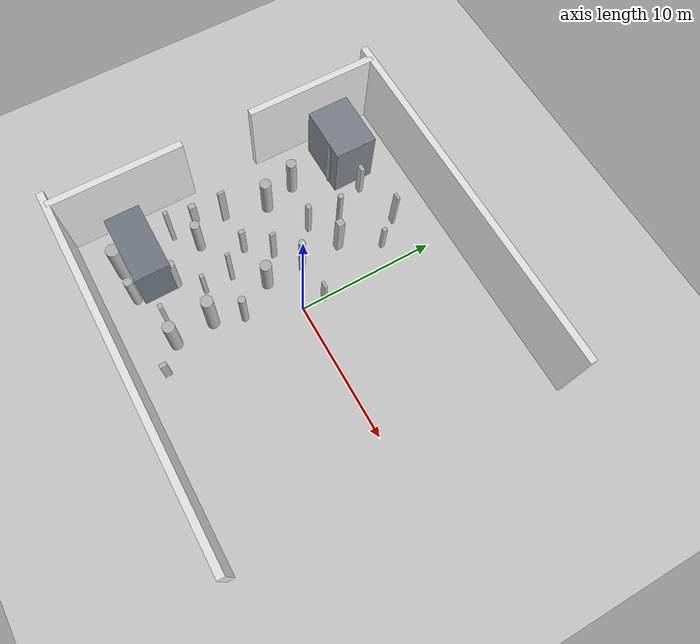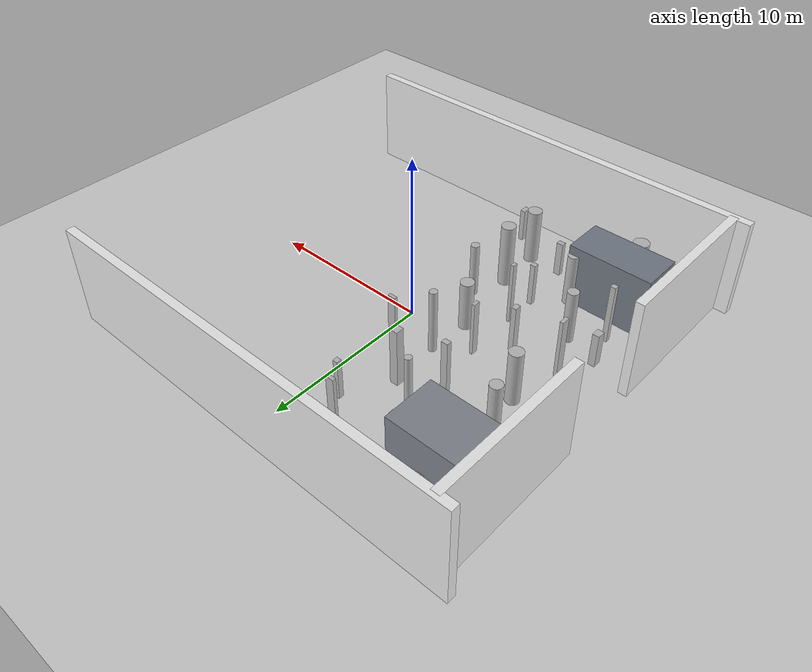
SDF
<sdf version="1.7">
 <world name="default">
  <model name="ground_plane">
   <static>1</static>
   <link name="link">
    <collision name="collision">
     <geometry><plane><normal>0 0 1</normal><size>100 100</size></plane></geometry>
     <surface>
      <contact><collide_bitmask>65535</collide_bitmask></contact>
      <friction><ode><mu>100</mu><mu2>50</mu2></ode></friction>
     </surface>
    </collision>
    <visual name="visual">
     <cast_shadows>0</cast_shadows>
     <geometry><plane><normal>0 0 1</normal><size>100 100</size></plane></geometry>
     <material>
      <script><uri>file://media/materials/scripts/gazebo.material</uri><name>Gazebo/Grey</name></script>
     </material>
    </visual>
   </link>
  </model>
  <model name="cylinder_3_0.9_0.9_3.8">
   <static>true</static>
   <pose>-8.257414005969185 -9.595632051193485 1.8890783754749252 0 0 0</pose>
   <link name="link">
    <visual name="visual">
     <geometry>
      <cylinder><radius>0.46100364447404574</radius><length>3.7781567509498504</length></cylinder>
     </geometry>
    </visual>
   </link>
  </model>
  <model name="cylinder_6_0.4_0.4_3.6">
   <static>true</static>
   <pose>-4.70888775790746 5.484673788684333 1.7842169744343241 0 0 0</pose>
   <link name="link">
    <visual name="visual">
     <geometry>
      <cylinder><radius>0.20563694013090655</radius><length>3.5684339488686483</length></cylinder>
     </geometry>
    </visual>
   </link>
  </model>
  <model name="cylinder_8_0.8_0.8_3.1">
   <static>true</static>
   <pose>-2.80984198852428 -1.259360924013171 1.530112735814635 0 0 0</pose>
   <link name="link">
    <visual name="visual">
     <geometry><cylinder><radius>0.4000300146337003</radius><length>3.06022547162927</length></cylinder></geometry>
    </visual>
   </link>
  </model>
  <model name="cylinder_9_0.5_0.5_4.0">
   <static>true</static>
   <pose>-2.725784581147548 1.4039354083575937 1.994186919029613 0 0 0</pose>
   <link name="link">
    <visual name="visual">
     <geometry>
      <cylinder><radius>0.23061344322440844</radius><length>3.988373838059226</length></cylinder>
     </geometry>
    </visual>
   </link>
  </model>
  <model name="cylinder_10_0.7_0.7_3.3">
   <static>true</static>
   <pose>-5.822464878103306 -6.773809642300074 1.626645801269891 0 0 0</pose>
   <link name="link">
    <visual name="visual">
     <geometry>
      <cylinder><radius>0.3398932318568919</radius><length>3.253291602539782</length></cylinder>
     </geometry>
    </visual>
   </link>
  </model>
  <model name="cylinder_11_0.7_0.7_4.0">
   <static>true</static>
   <pose>-8.057974484138775 6.758898149976076 1.988229732506698 0 0 0</pose>
   <link name="link">
    <visual name="visual">
     <geometry>
      <cylinder><radius>0.3405953604943105</radius><length>3.976459465013396</length></cylinder>
     </geometry>
    </visual>
   </link>
  </model>
  <model name="cylinder_13_0.6_0.6_3.3">
   <static>true</static>
   <pose>-7.596068775736622 -4.077196049557101 1.658991589696988 0 0 0</pose>
   <link name="link">
    <visual name="visual">
     <geometry><cylinder><radius>0.324278898354401</radius><length>3.317983179393976</length></cylinder></geometry>
    </visual>
   </link>
  </model>
  <model name="cylinder_14_0.7_0.7_3.3">
   <static>true</static>
   <pose>-8.717050073024312 3.849442387400398 1.6326947454697227 0 0 0</pose>
   <link name="link">
    <visual name="visual">
     <geometry>
      <cylinder><radius>0.3569744160400099</radius><length>3.2653894909394454</length></cylinder>
     </geometry>
    </visual>
   </link>
  </model>
  <model name="cylinder_15_0.8_0.8_3.3">
   <static>true</static>
   <pose>-8.121189784831166 1.5189299111235854 1.6592844762256618 0 0 0</pose>
   <link name="link">
    <visual name="visual">
     <geometry>
      <cylinder><radius>0.4002231139891045</radius><length>3.3185689524513236</length></cylinder>
     </geometry>
    </visual>
   </link>
  </model>
  <model name="cylinder_22_0.8_0.8_3.5">
   <static>true</static>
   <pose>-1.8563340554800067 -8.61666009089724 1.7267713413390344 0 0 0</pose>
   <link name="link">
    <visual name="visual">
     <geometry>
      <cylinder><radius>0.4166166798411044</radius><length>3.453542682678069</length></cylinder>
     </geometry>
    </visual>
   </link>
  </model>
  <model name="cylinder_24_0.6_0.6_3.2">
   <static>true</static>
   <pose>-6.000069502071998 -9.62956411078772 1.61196234403019 0 0 0</pose>
   <link name="link">
    <visual name="visual">
     <geometry>
      <cylinder><radius>0.30360550420907084</radius><length>3.22392468806038</length></cylinder>
     </geometry>
    </visual>
   </link>
  </model>
  <model name="cylinder_26_0.8_0.8_3.9">
   <static>true</static>
   <pose>-2.035578755678163 -5.803125020497557 1.9721861949919668 0 0 0</pose>
   <link name="link">
    <visual name="visual">
     <geometry>
      <cylinder><radius>0.4218652385147863</radius><length>3.9443723899839336</length></cylinder>
     </geometry>
    </visual>
   </link>
  </model>
  <model name="cylinder_27_0.5_0.5_3.4">
   <static>true</static>
   <pose>-1.3116674888375854 -3.764082360117948 1.6888759196462404 0 0 0</pose>
   <link name="link">
    <visual name="visual">
     <geometry>
      <cylinder><radius>0.25388110326789043</radius><length>3.377751839292481</length></cylinder>
     </geometry>
    </visual>
   </link>
  </model>
  <model name="box_0_0.3_0.4_2.9">
   <static>true</static>
   <pose>-5.850598491177812 -1.5062906249698749 1.4635754243648107 0 0 0</pose>
   <link name="link">
    <visual name="visual"><geometry><box><size>0.3 0.4 2.9</size></box></geometry></visual>
   </link>
  </model>
  <model name="box_2_0.5_0.2_3.5">
   <static>true</static>
   <pose>-2.8877452430008876 8.80863890505626 1.7486636198505474 0 0 0</pose>
   <link name="link">
    <visual name="visual"><geometry><box><size>0.5 0.2 3.5</size></box></geometry></visual>
   </link>
  </model>
  <model name="box_5_0.5_0.3_2.9">
   <static>true</static>
   <pose>-6.257382164983105 8.079679098564739 1.4569114216457657 0 0 0</pose>
   <link name="link">
    <visual name="visual"><geometry><box><size>0.5 0.3 2.9</size></box></geometry></visual>
   </link>
  </model>
  <model name="box_6_0.2_0.5_3.7">
   <static>true</static>
   <pose>-8.745740959533086 -1.5193549622031615 1.849038308428511 0 0 0</pose>
   <link name="link">
    <visual name="visual"><geometry><box><size>0.2 0.5 3.7</size></box></geometry></visual>
   </link>
  </model>
  <model name="box_8_0.4_0.3_3.3">
   <static>true</static>
   <pose>-5.17162759846852 3.2500914306535194 1.6658591175591877 0 0 0</pose>
   <link name="link">
    <visual name="visual"><geometry><box><size>0.4 0.3 3.3</size></box></geometry></visual>
   </link>
  </model>
  <model name="box_12_0.3_0.3_2.7">
   <static>true</static>
   <pose>-4.320000464757978 -5.23173438151884 1.3679275805370414 0 0 0</pose>
   <link name="link">
    <visual name="visual"><geometry><box><size>0.3 0.3 2.7</size></box></geometry></visual>
   </link>
  </model>
  <model name="box_13_0.5_0.5_3.6">
   <static>true</static>
   <pose>-2.962140076139148 4.428133359199048 1.8130538632474607 0 0 0</pose>
   <link name="link">
    <visual name="visual"><geometry><box><size>0.5 0.5 3.6</size></box></geometry></visual>
   </link>
  </model>
  <model name="box_14_0.5_0.2_2.3">
   <static>true</static>
   <pose>-0.0444618434931634 1.6216385934412614 1.1690254061291614 0 0 0</pose>
   <link name="link">
    <visual name="visual"><geometry><box><size>0.5 0.2 2.3</size></box></geometry></visual>
   </link>
  </model>
  <model name="box_15_0.3_0.3_2.5">
   <static>true</static>
   <pose>-1.525872930890543 7.142498350091348 1.271252076761864 0 0 0</pose>
   <link name="link">
    <visual name="visual"><geometry><box><size>0.3 0.3 2.5</size></box></geometry></visual>
   </link>
  </model>
  <model name="box_19_0.4_0.2_2.4">
   <static>true</static>
   <pose>-9.063872905756226 9.414628855412658 1.1785799680576563 0 0 0</pose>
   <link name="link">
    <visual name="visual"><geometry><box><size>0.4 0.2 2.4</size></box></geometry></visual>
   </link>
  </model>
  <model name="box_20_0.4_0.3_2.2">
   <static>true</static>
   <pose>-3.916026168011843 -8.492818618333192 1.107617705149582 0 0 0</pose>
   <link name="link">
    <visual name="visual"><geometry><box><size>0.4 0.3 2.2</size></box></geometry></visual>
   </link>
  </model>
  <model name="box_21_0.3_0.5_2.1">
   <static>true</static>
   <pose>-0.24647352923584975 -9.989080702060086 1.0635537748361585 0 0 0</pose>
   <link name="link">
    <visual name="visual"><geometry><box><size>0.3 0.5 2.1</size></box></geometry></visual>
   </link>
  </model>
  <model name="box_22_0.2_0.3_3.9">
   <static>true</static>
   <pose>-4.343262956478342 -3.207379116676017 1.96319729526038 0 0 0</pose>
   <link name="link">
    <visual name="visual"><geometry><box><size>0.2 0.3 3.9</size></box></geometry></visual>
   </link>
  </model>
  <model name="box_26_0.2_0.4_3.4">
   <static>true</static>
   <pose>-4.467005395816209 0.1268583864760835 1.706410577667011 0 0 0</pose>
   <link name="link">
    <visual name="visual"><geometry><box><size>0.2 0.4 3.4</size></box></geometry></visual>
   </link>
  </model>
  <model name="box_28_0.3_0.3_3.7">
   <static>true</static>
   <pose>-9.152719058171135 -5.44518013305427 1.8369903652886839 0 0 0</pose>
   <link name="link">
    <visual name="visual"><geometry><box><size>0.3 0.3 3.7</size></box></geometry></visual>
   </link>
  </model>
  <model name="box_29_0.4_0.5_2.1">
   <static>true</static>
   <pose>-9.68523520659075 -3.482903159924076 1.028362934230075 0 0 0</pose>
   <link name="link">
    <visual name="visual"><geometry><box><size>0.4 0.5 2.1</size></box></geometry></visual>
   </link>
  </model>
  <model name="demo_wall_north">
   <static>true</static>
   <pose>0 12 3 0 0 0</pose>
   <link name="link">
    <collision name="c"><geometry><box><size>26 0.5 6</size></box></geometry></collision>
    <visual name="v">
     <geometry><box><size>26 0.5 6</size></box></geometry>
     <material>
      <script><uri>file://media/materials/scripts/gazebo.material</uri><name>Gazebo/White</name></script>
     </material>
    </visual>
   </link>
  </model>
  <model name="demo_wall_south">
   <static>true</static>
   <pose>0 -12 3 0 0 0</pose>
   <link name="link">
    <collision name="c"><geometry><box><size>26 0.5 6</size></box></geometry></collision>
    <visual name="v">
     <geometry><box><size>26 0.5 6</size></box></geometry>
     <material>
      <script><uri>file://media/materials/scripts/gazebo.material</uri><name>Gazebo/White</name></script>
     </material>
    </visual>
   </link>
  </model>
  <model name="demo_wall_west_a">
   <static>true</static>
   <pose>-12 -7.25 3 0 0 0</pose>
   <link name="link">
    <collision name="c"><geometry><box><size>0.5 9.5 6</size></box></geometry></collision>
    <visual name="v">
     <geometry><box><size>0.5 9.5 6</size></box></geometry>
     <material>
      <script><uri>file://media/materials/scripts/gazebo.material</uri><name>Gazebo/White</name></script>
     </material>
    </visual>
   </link>
  </model>
  <model name="demo_wall_west_b">
   <static>true</static>
   <pose>-12 7.25 3 0 0 0</pose>
   <link name="link">
    <collision name="c"><geometry><box><size>0.5 9.5 6</size></box></geometry></collision>
    <visual name="v">
     <geometry><box><size>0.5 9.5 6</size></box></geometry>
     <material>
      <script><uri>file://media/materials/scripts/gazebo.material</uri><name>Gazebo/White</name></script>
     </material>
    </visual>
   </link>
  </model>
  <model name="demo_bldg_nw">
   <static>true</static>
   <pose>-9 8 2.2 0 0 0</pose>
   <link name="l">
    <collision name="c"><geometry><box><size>4 3 4.4</size></box></geometry></collision>
    <visual name="v">
     <geometry><box><size>4 3 4.4</size></box></geometry>
     <material><ambient>0.35 0.38 0.42 1</ambient><diffuse>0.5 0.52 0.55 1</diffuse></material>
    </visual>
   </link>
  </model>
  <model name="demo_bldg_sw">
   <static>true</static>
   <pose>-8 -8 1.9 0 0 0</pose>
   <link name="l">
    <collision name="c"><geometry><box><size>5 2.5 3.8</size></box></geometry></collision>
    <visual name="v">
     <geometry><box><size>5 2.5 3.8</size></box></geometry>
     <material><ambient>0.3 0.33 0.38 1</ambient><diffuse>0.45 0.48 0.52 1</diffuse></material>
    </visual>
   </link>
  </model>
 </world>
</sdf>
